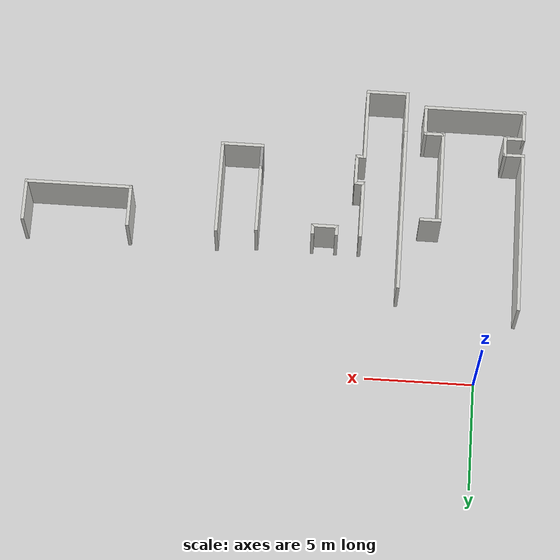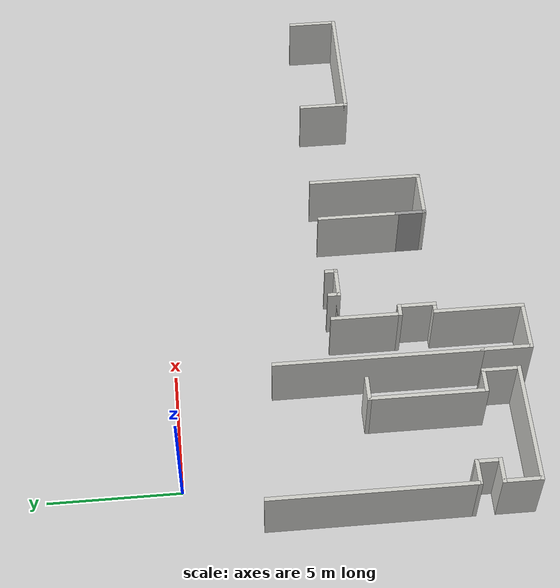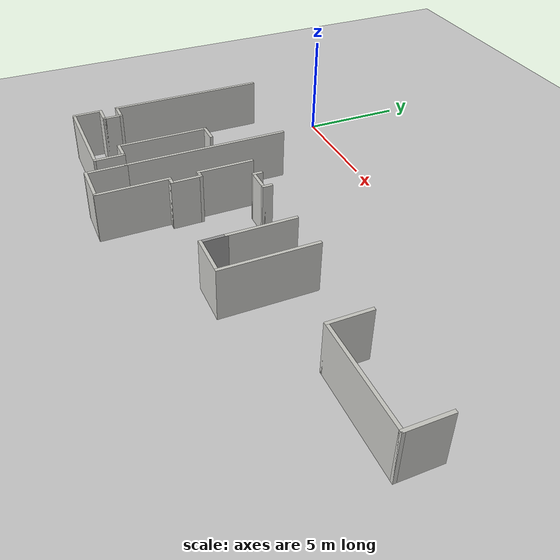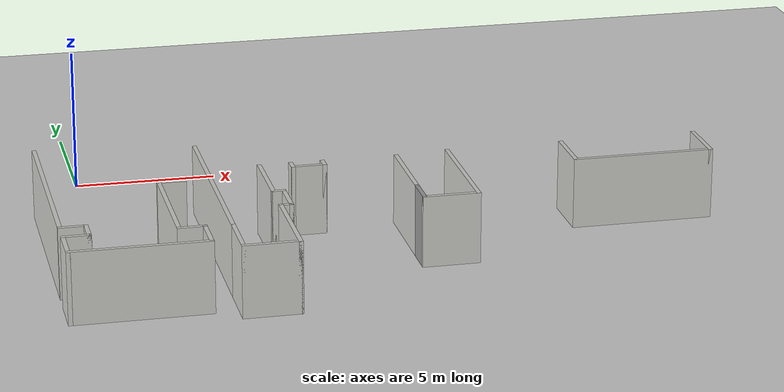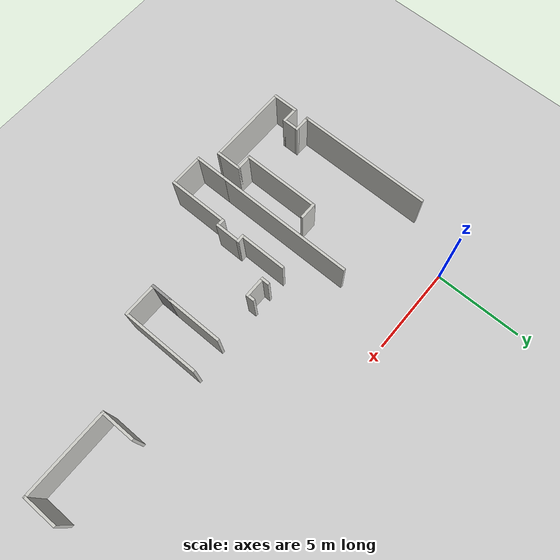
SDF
<sdf version="1.7">
 <world name="default">
  <model name="ground_plane">
   <static>1</static>
   <link name="link">
    <collision name="collision">
     <geometry><plane><normal>0 0 1</normal><size>100 100</size></plane></geometry>
     <surface>
      <contact><collide_bitmask>65535</collide_bitmask></contact>
      <friction><ode><mu>100</mu><mu2>50</mu2></ode></friction>
     </surface>
    </collision>
    <visual name="visual">
     <cast_shadows>0</cast_shadows>
     <geometry><plane><normal>0 0 1</normal><size>100 100</size></plane></geometry>
     <material>
      <script><uri>file://media/materials/scripts/gazebo.material</uri><name>Gazebo/Grey</name></script>
     </material>
    </visual>
   </link>
  </model>
  <model name="map_depo">
   <link name="Wall_35">
    <pose>-7.28378 -6.90998 0 0 -0 3.14159</pose>
    <visual name="Wall_35_Visual">
     <pose>0 0 1.25 0 -0 0</pose>
     <geometry><box><size>1 0.15 2.5</size></box></geometry>
     <material>
      <script><uri>file://media/materials/scripts/gazebo.material</uri><name>Gazebo/CeilingTiled</name></script>
      <ambient>1 1 1 1</ambient>
      <shader type="pixel"/>
     </material>
     <meta><layer>0</layer></meta>
    </visual>
    <collision name="Wall_35_Collision">
     <pose>0 0 1.25 0 -0 0</pose>
     <geometry><box><size>1 0.15 2.5</size></box></geometry>
     <surface>
      <friction>
       <ode><mu>1</mu><mu2>1</mu2><fdir1>0 0 0</fdir1><slip1>0</slip1><slip2>0</slip2></ode>
       <torsional>
        <coefficient>1</coefficient>
        <patch_radius>0</patch_radius>
        <surface_radius>0</surface_radius>
        <use_patch_radius>1</use_patch_radius>
        <ode><slip>0</slip></ode>
       </torsional>
      </friction>
      <bounce><restitution_coefficient>0</restitution_coefficient><threshold>1e+06</threshold></bounce>
      <contact>
       <collide_without_contact>0</collide_without_contact>
       <collide_without_contact_bitmask>1</collide_without_contact_bitmask>
       <collide_bitmask>1</collide_bitmask>
       <ode>
        <soft_cfm>0</soft_cfm>
        <soft_erp>0.2</soft_erp>
        <kp>1e+13</kp>
        <kd>1</kd>
        <max_vel>0.01</max_vel>
        <min_depth>0</min_depth>
       </ode>
       <bullet>
        <split_impulse>1</split_impulse>
        <split_impulse_penetration_threshold>-0.01</split_impulse_penetration_threshold>
        <soft_cfm>0</soft_cfm>
        <soft_erp>0.2</soft_erp>
        <kp>1e+13</kp>
        <kd>1</kd>
       </bullet>
      </contact>
     </surface>
    </collision>
   </link>
   <link name="Wall_36">
    <pose>-7.70878 -9.08498 0 0 0 -1.5708</pose>
    <visual name="Wall_36_Visual">
     <pose>0 0 1.25 0 -0 0</pose>
     <geometry><box><size>4.5 0.15 2.5</size></box></geometry>
     <material>
      <script><uri>file://media/materials/scripts/gazebo.material</uri><name>Gazebo/CeilingTiled</name></script>
      <ambient>1 1 1 1</ambient>
      <shader type="pixel"/>
     </material>
     <meta><layer>0</layer></meta>
    </visual>
    <collision name="Wall_36_Collision">
     <pose>0 0 1.25 0 -0 0</pose>
     <geometry><box><size>4.5 0.15 2.5</size></box></geometry>
     <surface>
      <friction>
       <ode><mu>1</mu><mu2>1</mu2><fdir1>0 0 0</fdir1><slip1>0</slip1><slip2>0</slip2></ode>
       <torsional>
        <coefficient>1</coefficient>
        <patch_radius>0</patch_radius>
        <surface_radius>0</surface_radius>
        <use_patch_radius>1</use_patch_radius>
        <ode><slip>0</slip></ode>
       </torsional>
      </friction>
      <bounce><restitution_coefficient>0</restitution_coefficient><threshold>1e+06</threshold></bounce>
      <contact>
       <collide_without_contact>0</collide_without_contact>
       <collide_without_contact_bitmask>1</collide_without_contact_bitmask>
       <collide_bitmask>1</collide_bitmask>
       <ode>
        <soft_cfm>0</soft_cfm>
        <soft_erp>0.2</soft_erp>
        <kp>1e+13</kp>
        <kd>1</kd>
        <max_vel>0.01</max_vel>
        <min_depth>0</min_depth>
       </ode>
       <bullet>
        <split_impulse>1</split_impulse>
        <split_impulse_penetration_threshold>-0.01</split_impulse_penetration_threshold>
        <soft_cfm>0</soft_cfm>
        <soft_erp>0.2</soft_erp>
        <kp>1e+13</kp>
        <kd>1</kd>
       </bullet>
      </contact>
     </surface>
    </collision>
   </link>
   <link name="Wall_39">
    <pose>-7.28378 -11.26 0 0 -0 0</pose>
    <visual name="Wall_39_Visual">
     <pose>0 0 1.25 0 -0 0</pose>
     <geometry><box><size>1 0.15 2.5</size></box></geometry>
     <material>
      <script><uri>file://media/materials/scripts/gazebo.material</uri><name>Gazebo/CeilingTiled</name></script>
      <ambient>1 1 1 1</ambient>
      <shader type="pixel"/>
     </material>
     <meta><layer>0</layer></meta>
    </visual>
    <collision name="Wall_39_Collision">
     <pose>0 0 1.25 0 -0 0</pose>
     <geometry><box><size>1 0.15 2.5</size></box></geometry>
     <surface>
      <friction>
       <ode><mu>1</mu><mu2>1</mu2><fdir1>0 0 0</fdir1><slip1>0</slip1><slip2>0</slip2></ode>
       <torsional>
        <coefficient>1</coefficient>
        <patch_radius>0</patch_radius>
        <surface_radius>0</surface_radius>
        <use_patch_radius>1</use_patch_radius>
        <ode><slip>0</slip></ode>
       </torsional>
      </friction>
      <bounce><restitution_coefficient>0</restitution_coefficient><threshold>1e+06</threshold></bounce>
      <contact>
       <collide_without_contact>0</collide_without_contact>
       <collide_without_contact_bitmask>1</collide_without_contact_bitmask>
       <collide_bitmask>1</collide_bitmask>
       <ode>
        <soft_cfm>0</soft_cfm>
        <soft_erp>0.2</soft_erp>
        <kp>1e+13</kp>
        <kd>1</kd>
        <max_vel>0.01</max_vel>
        <min_depth>0</min_depth>
       </ode>
       <bullet>
        <split_impulse>1</split_impulse>
        <split_impulse_penetration_threshold>-0.01</split_impulse_penetration_threshold>
        <soft_cfm>0</soft_cfm>
        <soft_erp>0.2</soft_erp>
        <kp>1e+13</kp>
        <kd>1</kd>
       </bullet>
      </contact>
     </surface>
    </collision>
   </link>
   <link name="Wall_40">
    <pose>-6.85878 -11.935 0 0 0 -1.5708</pose>
    <visual name="Wall_40_Visual">
     <pose>0 0 1.25 0 -0 0</pose>
     <geometry><box><size>1.5 0.15 2.5</size></box></geometry>
     <material>
      <script><uri>file://media/materials/scripts/gazebo.material</uri><name>Gazebo/CeilingTiled</name></script>
      <ambient>1 1 1 1</ambient>
      <shader type="pixel"/>
     </material>
     <meta><layer>0</layer></meta>
    </visual>
    <collision name="Wall_40_Collision">
     <pose>0 0 1.25 0 -0 0</pose>
     <geometry><box><size>1.5 0.15 2.5</size></box></geometry>
     <surface>
      <friction>
       <ode><mu>1</mu><mu2>1</mu2><fdir1>0 0 0</fdir1><slip1>0</slip1><slip2>0</slip2></ode>
       <torsional>
        <coefficient>1</coefficient>
        <patch_radius>0</patch_radius>
        <surface_radius>0</surface_radius>
        <use_patch_radius>1</use_patch_radius>
        <ode><slip>0</slip></ode>
       </torsional>
      </friction>
      <bounce><restitution_coefficient>0</restitution_coefficient><threshold>1e+06</threshold></bounce>
      <contact>
       <collide_without_contact>0</collide_without_contact>
       <collide_without_contact_bitmask>1</collide_without_contact_bitmask>
       <collide_bitmask>1</collide_bitmask>
       <ode>
        <soft_cfm>0</soft_cfm>
        <soft_erp>0.2</soft_erp>
        <kp>1e+13</kp>
        <kd>1</kd>
        <max_vel>0.01</max_vel>
        <min_depth>0</min_depth>
       </ode>
       <bullet>
        <split_impulse>1</split_impulse>
        <split_impulse_penetration_threshold>-0.01</split_impulse_penetration_threshold>
        <soft_cfm>0</soft_cfm>
        <soft_erp>0.2</soft_erp>
        <kp>1e+13</kp>
        <kd>1</kd>
       </bullet>
      </contact>
     </surface>
    </collision>
   </link>
   <link name="Wall_41">
    <pose>-9.15878 -12.61 0 0 -0 3.14159</pose>
    <visual name="Wall_41_Visual">
     <pose>0 0 1.25 0 -0 0</pose>
     <geometry><box><size>4.75 0.15 2.5</size></box></geometry>
     <material>
      <script><uri>file://media/materials/scripts/gazebo.material</uri><name>Gazebo/CeilingTiled</name></script>
      <ambient>1 1 1 1</ambient>
      <shader type="pixel"/>
     </material>
     <meta><layer>0</layer></meta>
    </visual>
    <collision name="Wall_41_Collision">
     <pose>0 0 1.25 0 -0 0</pose>
     <geometry><box><size>4.75 0.15 2.5</size></box></geometry>
     <surface>
      <friction>
       <ode><mu>1</mu><mu2>1</mu2><fdir1>0 0 0</fdir1><slip1>0</slip1><slip2>0</slip2></ode>
       <torsional>
        <coefficient>1</coefficient>
        <patch_radius>0</patch_radius>
        <surface_radius>0</surface_radius>
        <use_patch_radius>1</use_patch_radius>
        <ode><slip>0</slip></ode>
       </torsional>
      </friction>
      <bounce><restitution_coefficient>0</restitution_coefficient><threshold>1e+06</threshold></bounce>
      <contact>
       <collide_without_contact>0</collide_without_contact>
       <collide_without_contact_bitmask>1</collide_without_contact_bitmask>
       <collide_bitmask>1</collide_bitmask>
       <ode>
        <soft_cfm>0</soft_cfm>
        <soft_erp>0.2</soft_erp>
        <kp>1e+13</kp>
        <kd>1</kd>
        <max_vel>0.01</max_vel>
        <min_depth>0</min_depth>
       </ode>
       <bullet>
        <split_impulse>1</split_impulse>
        <split_impulse_penetration_threshold>-0.01</split_impulse_penetration_threshold>
        <soft_cfm>0</soft_cfm>
        <soft_erp>0.2</soft_erp>
        <kp>1e+13</kp>
        <kd>1</kd>
       </bullet>
      </contact>
     </surface>
    </collision>
   </link>
   <link name="Wall_42">
    <pose>-11.4588 -11.935 0 0 -0 1.5708</pose>
    <visual name="Wall_42_Visual">
     <pose>0 0 1.25 0 -0 0</pose>
     <geometry><box><size>1.5 0.15 2.5</size></box></geometry>
     <material>
      <script><uri>file://media/materials/scripts/gazebo.material</uri><name>Gazebo/CeilingTiled</name></script>
      <ambient>1 1 1 1</ambient>
      <shader type="pixel"/>
     </material>
     <meta><layer>0</layer></meta>
    </visual>
    <collision name="Wall_42_Collision">
     <pose>0 0 1.25 0 -0 0</pose>
     <geometry><box><size>1.5 0.15 2.5</size></box></geometry>
     <surface>
      <friction>
       <ode><mu>1</mu><mu2>1</mu2><fdir1>0 0 0</fdir1><slip1>0</slip1><slip2>0</slip2></ode>
       <torsional>
        <coefficient>1</coefficient>
        <patch_radius>0</patch_radius>
        <surface_radius>0</surface_radius>
        <use_patch_radius>1</use_patch_radius>
        <ode><slip>0</slip></ode>
       </torsional>
      </friction>
      <bounce><restitution_coefficient>0</restitution_coefficient><threshold>1e+06</threshold></bounce>
      <contact>
       <collide_without_contact>0</collide_without_contact>
       <collide_without_contact_bitmask>1</collide_without_contact_bitmask>
       <collide_bitmask>1</collide_bitmask>
       <ode>
        <soft_cfm>0</soft_cfm>
        <soft_erp>0.2</soft_erp>
        <kp>1e+13</kp>
        <kd>1</kd>
        <max_vel>0.01</max_vel>
        <min_depth>0</min_depth>
       </ode>
       <bullet>
        <split_impulse>1</split_impulse>
        <split_impulse_penetration_threshold>-0.01</split_impulse_penetration_threshold>
        <soft_cfm>0</soft_cfm>
        <soft_erp>0.2</soft_erp>
        <kp>1e+13</kp>
        <kd>1</kd>
       </bullet>
      </contact>
     </surface>
    </collision>
   </link>
   <link name="Wall_43">
    <pose>-11.0338 -11.26 0 0 -0 0</pose>
    <visual name="Wall_43_Visual">
     <pose>0 0 1.25 0 -0 0</pose>
     <geometry><box><size>1 0.15 2.5</size></box></geometry>
     <material>
      <script><uri>file://media/materials/scripts/gazebo.material</uri><name>Gazebo/CeilingTiled</name></script>
      <ambient>1 1 1 1</ambient>
      <shader type="pixel"/>
     </material>
     <meta><layer>0</layer></meta>
    </visual>
    <collision name="Wall_43_Collision">
     <pose>0 0 1.25 0 -0 0</pose>
     <geometry><box><size>1 0.15 2.5</size></box></geometry>
     <surface>
      <friction>
       <ode><mu>1</mu><mu2>1</mu2><fdir1>0 0 0</fdir1><slip1>0</slip1><slip2>0</slip2></ode>
       <torsional>
        <coefficient>1</coefficient>
        <patch_radius>0</patch_radius>
        <surface_radius>0</surface_radius>
        <use_patch_radius>1</use_patch_radius>
        <ode><slip>0</slip></ode>
       </torsional>
      </friction>
      <bounce><restitution_coefficient>0</restitution_coefficient><threshold>1e+06</threshold></bounce>
      <contact>
       <collide_without_contact>0</collide_without_contact>
       <collide_without_contact_bitmask>1</collide_without_contact_bitmask>
       <collide_bitmask>1</collide_bitmask>
       <ode>
        <soft_cfm>0</soft_cfm>
        <soft_erp>0.2</soft_erp>
        <kp>1e+13</kp>
        <kd>1</kd>
        <max_vel>0.01</max_vel>
        <min_depth>0</min_depth>
       </ode>
       <bullet>
        <split_impulse>1</split_impulse>
        <split_impulse_penetration_threshold>-0.01</split_impulse_penetration_threshold>
        <soft_cfm>0</soft_cfm>
        <soft_erp>0.2</soft_erp>
        <kp>1e+13</kp>
        <kd>1</kd>
       </bullet>
      </contact>
     </surface>
    </collision>
   </link>
   <link name="Wall_44">
    <pose>-10.6088 -10.835 0 0 -0 1.5708</pose>
    <visual name="Wall_44_Visual">
     <pose>0 0 1.25 0 -0 0</pose>
     <geometry><box><size>1 0.15 2.5</size></box></geometry>
     <material>
      <script><uri>file://media/materials/scripts/gazebo.material</uri><name>Gazebo/CeilingTiled</name></script>
      <ambient>1 1 1 1</ambient>
      <shader type="pixel"/>
     </material>
     <meta><layer>0</layer></meta>
    </visual>
    <collision name="Wall_44_Collision">
     <pose>0 0 1.25 0 -0 0</pose>
     <geometry><box><size>1 0.15 2.5</size></box></geometry>
     <surface>
      <friction>
       <ode><mu>1</mu><mu2>1</mu2><fdir1>0 0 0</fdir1><slip1>0</slip1><slip2>0</slip2></ode>
       <torsional>
        <coefficient>1</coefficient>
        <patch_radius>0</patch_radius>
        <surface_radius>0</surface_radius>
        <use_patch_radius>1</use_patch_radius>
        <ode><slip>0</slip></ode>
       </torsional>
      </friction>
      <bounce><restitution_coefficient>0</restitution_coefficient><threshold>1e+06</threshold></bounce>
      <contact>
       <collide_without_contact>0</collide_without_contact>
       <collide_without_contact_bitmask>1</collide_without_contact_bitmask>
       <collide_bitmask>1</collide_bitmask>
       <ode>
        <soft_cfm>0</soft_cfm>
        <soft_erp>0.2</soft_erp>
        <kp>1e+13</kp>
        <kd>1</kd>
        <max_vel>0.01</max_vel>
        <min_depth>0</min_depth>
       </ode>
       <bullet>
        <split_impulse>1</split_impulse>
        <split_impulse_penetration_threshold>-0.01</split_impulse_penetration_threshold>
        <soft_cfm>0</soft_cfm>
        <soft_erp>0.2</soft_erp>
        <kp>1e+13</kp>
        <kd>1</kd>
       </bullet>
      </contact>
     </surface>
    </collision>
   </link>
   <link name="Wall_45">
    <pose>-11.0338 -10.41 0 0 -0 3.14159</pose>
    <visual name="Wall_45_Visual">
     <pose>0 0 1.25 0 -0 0</pose>
     <geometry><box><size>1 0.15 2.5</size></box></geometry>
     <material>
      <script><uri>file://media/materials/scripts/gazebo.material</uri><name>Gazebo/CeilingTiled</name></script>
      <ambient>1 1 1 1</ambient>
      <shader type="pixel"/>
     </material>
     <meta><layer>0</layer></meta>
    </visual>
    <collision name="Wall_45_Collision">
     <pose>0 0 1.25 0 -0 0</pose>
     <geometry><box><size>1 0.15 2.5</size></box></geometry>
     <surface>
      <friction>
       <ode><mu>1</mu><mu2>1</mu2><fdir1>0 0 0</fdir1><slip1>0</slip1><slip2>0</slip2></ode>
       <torsional>
        <coefficient>1</coefficient>
        <patch_radius>0</patch_radius>
        <surface_radius>0</surface_radius>
        <use_patch_radius>1</use_patch_radius>
        <ode><slip>0</slip></ode>
       </torsional>
      </friction>
      <bounce><restitution_coefficient>0</restitution_coefficient><threshold>1e+06</threshold></bounce>
      <contact>
       <collide_without_contact>0</collide_without_contact>
       <collide_without_contact_bitmask>1</collide_without_contact_bitmask>
       <collide_bitmask>1</collide_bitmask>
       <ode>
        <soft_cfm>0</soft_cfm>
        <soft_erp>0.2</soft_erp>
        <kp>1e+13</kp>
        <kd>1</kd>
        <max_vel>0.01</max_vel>
        <min_depth>0</min_depth>
       </ode>
       <bullet>
        <split_impulse>1</split_impulse>
        <split_impulse_penetration_threshold>-0.01</split_impulse_penetration_threshold>
        <soft_cfm>0</soft_cfm>
        <soft_erp>0.2</soft_erp>
        <kp>1e+13</kp>
        <kd>1</kd>
       </bullet>
      </contact>
     </surface>
    </collision>
   </link>
   <link name="Wall_46">
    <pose>-11.4588 -6.60998 0 0 -0 1.5708</pose>
    <visual name="Wall_46_Visual">
     <pose>0 0 1.25 0 -0 0</pose>
     <geometry><box><size>7.75 0.15 2.5</size></box></geometry>
     <material>
      <script><uri>file://media/materials/scripts/gazebo.material</uri><name>Gazebo/CeilingTiled</name></script>
      <ambient>1 1 1 1</ambient>
      <shader type="pixel"/>
     </material>
     <meta><layer>0</layer></meta>
    </visual>
    <collision name="Wall_46_Collision">
     <pose>0 0 1.25 0 -0 0</pose>
     <geometry><box><size>7.75 0.15 2.5</size></box></geometry>
     <surface>
      <friction>
       <ode><mu>1</mu><mu2>1</mu2><fdir1>0 0 0</fdir1><slip1>0</slip1><slip2>0</slip2></ode>
       <torsional>
        <coefficient>1</coefficient>
        <patch_radius>0</patch_radius>
        <surface_radius>0</surface_radius>
        <use_patch_radius>1</use_patch_radius>
        <ode><slip>0</slip></ode>
       </torsional>
      </friction>
      <bounce><restitution_coefficient>0</restitution_coefficient><threshold>1e+06</threshold></bounce>
      <contact>
       <collide_without_contact>0</collide_without_contact>
       <collide_without_contact_bitmask>1</collide_without_contact_bitmask>
       <collide_bitmask>1</collide_bitmask>
       <ode>
        <soft_cfm>0</soft_cfm>
        <soft_erp>0.2</soft_erp>
        <kp>1e+13</kp>
        <kd>1</kd>
        <max_vel>0.01</max_vel>
        <min_depth>0</min_depth>
       </ode>
       <bullet>
        <split_impulse>1</split_impulse>
        <split_impulse_penetration_threshold>-0.01</split_impulse_penetration_threshold>
        <soft_cfm>0</soft_cfm>
        <soft_erp>0.2</soft_erp>
        <kp>1e+13</kp>
        <kd>1</kd>
       </bullet>
      </contact>
     </surface>
    </collision>
   </link>
   <link name="Wall_68">
    <pose>-5.95009 -7.45997 0 0 0 -1.5708</pose>
    <visual name="Wall_68_Visual">
     <pose>0 0 1.25 0 -0 0</pose>
     <geometry><box><size>8 0.15 2.5</size></box></geometry>
     <material>
      <script><uri>file://media/materials/scripts/gazebo.material</uri><name>Gazebo/CeilingTiled</name></script>
      <ambient>1 1 1 1</ambient>
      <shader type="pixel"/>
     </material>
     <meta><layer>0</layer></meta>
    </visual>
    <collision name="Wall_68_Collision">
     <pose>0 0 1.25 0 -0 0</pose>
     <geometry><box><size>8 0.15 2.5</size></box></geometry>
     <surface>
      <friction>
       <ode><mu>1</mu><mu2>1</mu2><fdir1>0 0 0</fdir1><slip1>0</slip1><slip2>0</slip2></ode>
       <torsional>
        <coefficient>1</coefficient>
        <patch_radius>0</patch_radius>
        <surface_radius>0</surface_radius>
        <use_patch_radius>1</use_patch_radius>
        <ode><slip>0</slip></ode>
       </torsional>
      </friction>
      <bounce><restitution_coefficient>0</restitution_coefficient><threshold>1e+06</threshold></bounce>
      <contact>
       <collide_without_contact>0</collide_without_contact>
       <collide_without_contact_bitmask>1</collide_without_contact_bitmask>
       <collide_bitmask>1</collide_bitmask>
       <ode>
        <soft_cfm>0</soft_cfm>
        <soft_erp>0.2</soft_erp>
        <kp>1e+13</kp>
        <kd>1</kd>
        <max_vel>0.01</max_vel>
        <min_depth>0</min_depth>
       </ode>
       <bullet>
        <split_impulse>1</split_impulse>
        <split_impulse_penetration_threshold>-0.01</split_impulse_penetration_threshold>
        <soft_cfm>0</soft_cfm>
        <soft_erp>0.2</soft_erp>
        <kp>1e+13</kp>
        <kd>1</kd>
       </bullet>
      </contact>
     </surface>
    </collision>
   </link>
   <link name="Wall_70">
    <pose>-5.95009 -12.31 0 0 0 -1.5708</pose>
    <visual name="Wall_70_Visual">
     <pose>0 0 1.25 0 -0 0</pose>
     <geometry><box><size>2 0.15 2.5</size></box></geometry>
     <material>
      <script><uri>file://media/materials/scripts/gazebo.material</uri><name>Gazebo/CeilingTiled</name></script>
      <ambient>1 1 1 1</ambient>
      <shader type="pixel"/>
     </material>
     <meta><layer>0</layer></meta>
    </visual>
    <collision name="Wall_70_Collision">
     <pose>0 0 1.25 0 -0 0</pose>
     <geometry><box><size>2 0.15 2.5</size></box></geometry>
     <surface>
      <friction>
       <ode><mu>1</mu><mu2>1</mu2><fdir1>0 0 0</fdir1><slip1>0</slip1><slip2>0</slip2></ode>
       <torsional>
        <coefficient>1</coefficient>
        <patch_radius>0</patch_radius>
        <surface_radius>0</surface_radius>
        <use_patch_radius>1</use_patch_radius>
        <ode><slip>0</slip></ode>
       </torsional>
      </friction>
      <bounce><restitution_coefficient>0</restitution_coefficient><threshold>1e+06</threshold></bounce>
      <contact>
       <collide_without_contact>0</collide_without_contact>
       <collide_without_contact_bitmask>1</collide_without_contact_bitmask>
       <collide_bitmask>1</collide_bitmask>
       <ode>
        <soft_cfm>0</soft_cfm>
        <soft_erp>0.2</soft_erp>
        <kp>1e+13</kp>
        <kd>1</kd>
        <max_vel>0.01</max_vel>
        <min_depth>0</min_depth>
       </ode>
       <bullet>
        <split_impulse>1</split_impulse>
        <split_impulse_penetration_threshold>-0.01</split_impulse_penetration_threshold>
        <soft_cfm>0</soft_cfm>
        <soft_erp>0.2</soft_erp>
        <kp>1e+13</kp>
        <kd>1</kd>
       </bullet>
      </contact>
     </surface>
    </collision>
   </link>
   <link name="Wall_71">
    <pose>-5.02509 -13.235 0 0 -0 0</pose>
    <visual name="Wall_71_Visual">
     <pose>0 0 1.25 0 -0 0</pose>
     <geometry><box><size>2 0.15 2.5</size></box></geometry>
     <material>
      <script><uri>file://media/materials/scripts/gazebo.material</uri><name>Gazebo/CeilingTiled</name></script>
      <ambient>1 1 1 1</ambient>
      <shader type="pixel"/>
     </material>
     <meta><layer>0</layer></meta>
    </visual>
    <collision name="Wall_71_Collision">
     <pose>0 0 1.25 0 -0 0</pose>
     <geometry><box><size>2 0.15 2.5</size></box></geometry>
     <surface>
      <friction>
       <ode><mu>1</mu><mu2>1</mu2><fdir1>0 0 0</fdir1><slip1>0</slip1><slip2>0</slip2></ode>
       <torsional>
        <coefficient>1</coefficient>
        <patch_radius>0</patch_radius>
        <surface_radius>0</surface_radius>
        <use_patch_radius>1</use_patch_radius>
        <ode><slip>0</slip></ode>
       </torsional>
      </friction>
      <bounce><restitution_coefficient>0</restitution_coefficient><threshold>1e+06</threshold></bounce>
      <contact>
       <collide_without_contact>0</collide_without_contact>
       <collide_without_contact_bitmask>1</collide_without_contact_bitmask>
       <collide_bitmask>1</collide_bitmask>
       <ode>
        <soft_cfm>0</soft_cfm>
        <soft_erp>0.2</soft_erp>
        <kp>1e+13</kp>
        <kd>1</kd>
        <max_vel>0.01</max_vel>
        <min_depth>0</min_depth>
       </ode>
       <bullet>
        <split_impulse>1</split_impulse>
        <split_impulse_penetration_threshold>-0.01</split_impulse_penetration_threshold>
        <soft_cfm>0</soft_cfm>
        <soft_erp>0.2</soft_erp>
        <kp>1e+13</kp>
        <kd>1</kd>
       </bullet>
      </contact>
     </surface>
    </collision>
   </link>
   <link name="Wall_72">
    <pose>-4.10009 -11.56 0 0 -0 1.5708</pose>
    <visual name="Wall_72_Visual">
     <pose>0 0 1.25 0 -0 0</pose>
     <geometry><box><size>3.5 0.15 2.5</size></box></geometry>
     <material>
      <script><uri>file://media/materials/scripts/gazebo.material</uri><name>Gazebo/CeilingTiled</name></script>
      <ambient>1 1 1 1</ambient>
      <shader type="pixel"/>
     </material>
     <meta><layer>0</layer></meta>
    </visual>
    <collision name="Wall_72_Collision">
     <pose>0 0 1.25 0 -0 0</pose>
     <geometry><box><size>3.5 0.15 2.5</size></box></geometry>
     <surface>
      <friction>
       <ode><mu>1</mu><mu2>1</mu2><fdir1>0 0 0</fdir1><slip1>0</slip1><slip2>0</slip2></ode>
       <torsional>
        <coefficient>1</coefficient>
        <patch_radius>0</patch_radius>
        <surface_radius>0</surface_radius>
        <use_patch_radius>1</use_patch_radius>
        <ode><slip>0</slip></ode>
       </torsional>
      </friction>
      <bounce><restitution_coefficient>0</restitution_coefficient><threshold>1e+06</threshold></bounce>
      <contact>
       <collide_without_contact>0</collide_without_contact>
       <collide_without_contact_bitmask>1</collide_without_contact_bitmask>
       <collide_bitmask>1</collide_bitmask>
       <ode>
        <soft_cfm>0</soft_cfm>
        <soft_erp>0.2</soft_erp>
        <kp>1e+13</kp>
        <kd>1</kd>
        <max_vel>0.01</max_vel>
        <min_depth>0</min_depth>
       </ode>
       <bullet>
        <split_impulse>1</split_impulse>
        <split_impulse_penetration_threshold>-0.01</split_impulse_penetration_threshold>
        <soft_cfm>0</soft_cfm>
        <soft_erp>0.2</soft_erp>
        <kp>1e+13</kp>
        <kd>1</kd>
       </bullet>
      </contact>
     </surface>
    </collision>
   </link>
   <link name="Wall_73">
    <pose>-3.92509 -9.88497 0 0 -0 0</pose>
    <visual name="Wall_73_Visual">
     <pose>0 0 1.25 0 -0 0</pose>
     <geometry><box><size>0.5 0.15 2.5</size></box></geometry>
     <material>
      <script><uri>file://media/materials/scripts/gazebo.material</uri><name>Gazebo/CeilingTiled</name></script>
      <ambient>1 1 1 1</ambient>
      <shader type="pixel"/>
     </material>
     <meta><layer>0</layer></meta>
    </visual>
    <collision name="Wall_73_Collision">
     <pose>0 0 1.25 0 -0 0</pose>
     <geometry><box><size>0.5 0.15 2.5</size></box></geometry>
     <surface>
      <friction>
       <ode><mu>1</mu><mu2>1</mu2><fdir1>0 0 0</fdir1><slip1>0</slip1><slip2>0</slip2></ode>
       <torsional>
        <coefficient>1</coefficient>
        <patch_radius>0</patch_radius>
        <surface_radius>0</surface_radius>
        <use_patch_radius>1</use_patch_radius>
        <ode><slip>0</slip></ode>
       </torsional>
      </friction>
      <bounce><restitution_coefficient>0</restitution_coefficient><threshold>1e+06</threshold></bounce>
      <contact>
       <collide_without_contact>0</collide_without_contact>
       <collide_without_contact_bitmask>1</collide_without_contact_bitmask>
       <collide_bitmask>1</collide_bitmask>
       <ode>
        <soft_cfm>0</soft_cfm>
        <soft_erp>0.2</soft_erp>
        <kp>1e+13</kp>
        <kd>1</kd>
        <max_vel>0.01</max_vel>
        <min_depth>0</min_depth>
       </ode>
       <bullet>
        <split_impulse>1</split_impulse>
        <split_impulse_penetration_threshold>-0.01</split_impulse_penetration_threshold>
        <soft_cfm>0</soft_cfm>
        <soft_erp>0.2</soft_erp>
        <kp>1e+13</kp>
        <kd>1</kd>
       </bullet>
      </contact>
     </surface>
    </collision>
   </link>
   <link name="Wall_74">
    <pose>-3.75009 -9.20997 0 0 -0 1.5708</pose>
    <visual name="Wall_74_Visual">
     <pose>0 0 1.25 0 -0 0</pose>
     <geometry><box><size>1.5 0.15 2.5</size></box></geometry>
     <material>
      <script><uri>file://media/materials/scripts/gazebo.material</uri><name>Gazebo/CeilingTiled</name></script>
      <ambient>1 1 1 1</ambient>
      <shader type="pixel"/>
     </material>
     <meta><layer>0</layer></meta>
    </visual>
    <collision name="Wall_74_Collision">
     <pose>0 0 1.25 0 -0 0</pose>
     <geometry><box><size>1.5 0.15 2.5</size></box></geometry>
     <surface>
      <friction>
       <ode><mu>1</mu><mu2>1</mu2><fdir1>0 0 0</fdir1><slip1>0</slip1><slip2>0</slip2></ode>
       <torsional>
        <coefficient>1</coefficient>
        <patch_radius>0</patch_radius>
        <surface_radius>0</surface_radius>
        <use_patch_radius>1</use_patch_radius>
        <ode><slip>0</slip></ode>
       </torsional>
      </friction>
      <bounce><restitution_coefficient>0</restitution_coefficient><threshold>1e+06</threshold></bounce>
      <contact>
       <collide_without_contact>0</collide_without_contact>
       <collide_without_contact_bitmask>1</collide_without_contact_bitmask>
       <collide_bitmask>1</collide_bitmask>
       <ode>
        <soft_cfm>0</soft_cfm>
        <soft_erp>0.2</soft_erp>
        <kp>1e+13</kp>
        <kd>1</kd>
        <max_vel>0.01</max_vel>
        <min_depth>0</min_depth>
       </ode>
       <bullet>
        <split_impulse>1</split_impulse>
        <split_impulse_penetration_threshold>-0.01</split_impulse_penetration_threshold>
        <soft_cfm>0</soft_cfm>
        <soft_erp>0.2</soft_erp>
        <kp>1e+13</kp>
        <kd>1</kd>
       </bullet>
      </contact>
     </surface>
    </collision>
   </link>
   <link name="Wall_75">
    <pose>-3.92509 -8.53497 0 0 -0 3.14159</pose>
    <visual name="Wall_75_Visual">
     <pose>0 0 1.25 0 -0 0</pose>
     <geometry><box><size>0.5 0.15 2.5</size></box></geometry>
     <material>
      <script><uri>file://media/materials/scripts/gazebo.material</uri><name>Gazebo/CeilingTiled</name></script>
      <ambient>1 1 1 1</ambient>
      <shader type="pixel"/>
     </material>
     <meta><layer>0</layer></meta>
    </visual>
    <collision name="Wall_75_Collision">
     <pose>0 0 1.25 0 -0 0</pose>
     <geometry><box><size>0.5 0.15 2.5</size></box></geometry>
     <surface>
      <friction>
       <ode><mu>1</mu><mu2>1</mu2><fdir1>0 0 0</fdir1><slip1>0</slip1><slip2>0</slip2></ode>
       <torsional>
        <coefficient>1</coefficient>
        <patch_radius>0</patch_radius>
        <surface_radius>0</surface_radius>
        <use_patch_radius>1</use_patch_radius>
        <ode><slip>0</slip></ode>
       </torsional>
      </friction>
      <bounce><restitution_coefficient>0</restitution_coefficient><threshold>1e+06</threshold></bounce>
      <contact>
       <collide_without_contact>0</collide_without_contact>
       <collide_without_contact_bitmask>1</collide_without_contact_bitmask>
       <collide_bitmask>1</collide_bitmask>
       <ode>
        <soft_cfm>0</soft_cfm>
        <soft_erp>0.2</soft_erp>
        <kp>1e+13</kp>
        <kd>1</kd>
        <max_vel>0.01</max_vel>
        <min_depth>0</min_depth>
       </ode>
       <bullet>
        <split_impulse>1</split_impulse>
        <split_impulse_penetration_threshold>-0.01</split_impulse_penetration_threshold>
        <soft_cfm>0</soft_cfm>
        <soft_erp>0.2</soft_erp>
        <kp>1e+13</kp>
        <kd>1</kd>
       </bullet>
      </contact>
     </surface>
    </collision>
   </link>
   <link name="Wall_76">
    <pose>-4.10009 -7.23497 0 0 -0 1.5708</pose>
    <visual name="Wall_76_Visual">
     <pose>0 0 1.25 0 -0 0</pose>
     <geometry><box><size>2.75 0.15 2.5</size></box></geometry>
     <material>
      <script><uri>file://media/materials/scripts/gazebo.material</uri><name>Gazebo/CeilingTiled</name></script>
      <ambient>1 1 1 1</ambient>
      <shader type="pixel"/>
     </material>
     <meta><layer>0</layer></meta>
    </visual>
    <collision name="Wall_76_Collision">
     <pose>0 0 1.25 0 -0 0</pose>
     <geometry><box><size>2.75 0.15 2.5</size></box></geometry>
     <surface>
      <friction>
       <ode><mu>1</mu><mu2>1</mu2><fdir1>0 0 0</fdir1><slip1>0</slip1><slip2>0</slip2></ode>
       <torsional>
        <coefficient>1</coefficient>
        <patch_radius>0</patch_radius>
        <surface_radius>0</surface_radius>
        <use_patch_radius>1</use_patch_radius>
        <ode><slip>0</slip></ode>
       </torsional>
      </friction>
      <bounce><restitution_coefficient>0</restitution_coefficient><threshold>1e+06</threshold></bounce>
      <contact>
       <collide_without_contact>0</collide_without_contact>
       <collide_without_contact_bitmask>1</collide_without_contact_bitmask>
       <collide_bitmask>1</collide_bitmask>
       <ode>
        <soft_cfm>0</soft_cfm>
        <soft_erp>0.2</soft_erp>
        <kp>1e+13</kp>
        <kd>1</kd>
        <max_vel>0.01</max_vel>
        <min_depth>0</min_depth>
       </ode>
       <bullet>
        <split_impulse>1</split_impulse>
        <split_impulse_penetration_threshold>-0.01</split_impulse_penetration_threshold>
        <soft_cfm>0</soft_cfm>
        <soft_erp>0.2</soft_erp>
        <kp>1e+13</kp>
        <kd>1</kd>
       </bullet>
      </contact>
     </surface>
    </collision>
   </link>
   <link name="Wall_79">
    <pose>-3.00009 -6.10997 0 0 0 -1.5708</pose>
    <visual name="Wall_79_Visual">
     <pose>0 0 1.25 0 -0 0</pose>
     <geometry><box><size>0.5 0.15 2.5</size></box></geometry>
     <material>
      <script><uri>file://media/materials/scripts/gazebo.material</uri><name>Gazebo/CeilingTiled</name></script>
      <ambient>1 1 1 1</ambient>
      <shader type="pixel"/>
     </material>
     <meta><layer>0</layer></meta>
    </visual>
    <collision name="Wall_79_Collision">
     <pose>0 0 1.25 0 -0 0</pose>
     <geometry><box><size>0.5 0.15 2.5</size></box></geometry>
     <surface>
      <friction>
       <ode><mu>1</mu><mu2>1</mu2><fdir1>0 0 0</fdir1><slip1>0</slip1><slip2>0</slip2></ode>
       <torsional>
        <coefficient>1</coefficient>
        <patch_radius>0</patch_radius>
        <surface_radius>0</surface_radius>
        <use_patch_radius>1</use_patch_radius>
        <ode><slip>0</slip></ode>
       </torsional>
      </friction>
      <bounce><restitution_coefficient>0</restitution_coefficient><threshold>1e+06</threshold></bounce>
      <contact>
       <collide_without_contact>0</collide_without_contact>
       <collide_without_contact_bitmask>1</collide_without_contact_bitmask>
       <collide_bitmask>1</collide_bitmask>
       <ode>
        <soft_cfm>0</soft_cfm>
        <soft_erp>0.2</soft_erp>
        <kp>1e+13</kp>
        <kd>1</kd>
        <max_vel>0.01</max_vel>
        <min_depth>0</min_depth>
       </ode>
       <bullet>
        <split_impulse>1</split_impulse>
        <split_impulse_penetration_threshold>-0.01</split_impulse_penetration_threshold>
        <soft_cfm>0</soft_cfm>
        <soft_erp>0.2</soft_erp>
        <kp>1e+13</kp>
        <kd>1</kd>
       </bullet>
      </contact>
     </surface>
    </collision>
   </link>
   <link name="Wall_80">
    <pose>-2.45009 -6.28497 0 0 -0 0</pose>
    <visual name="Wall_80_Visual">
     <pose>0 0 1.25 0 -0 0</pose>
     <geometry><box><size>1.25 0.15 2.5</size></box></geometry>
     <material>
      <script><uri>file://media/materials/scripts/gazebo.material</uri><name>Gazebo/CeilingTiled</name></script>
      <ambient>1 1 1 1</ambient>
      <shader type="pixel"/>
     </material>
     <meta><layer>0</layer></meta>
    </visual>
    <collision name="Wall_80_Collision">
     <pose>0 0 1.25 0 -0 0</pose>
     <geometry><box><size>1.25 0.15 2.5</size></box></geometry>
     <surface>
      <friction>
       <ode><mu>1</mu><mu2>1</mu2><fdir1>0 0 0</fdir1><slip1>0</slip1><slip2>0</slip2></ode>
       <torsional>
        <coefficient>1</coefficient>
        <patch_radius>0</patch_radius>
        <surface_radius>0</surface_radius>
        <use_patch_radius>1</use_patch_radius>
        <ode><slip>0</slip></ode>
       </torsional>
      </friction>
      <bounce><restitution_coefficient>0</restitution_coefficient><threshold>1e+06</threshold></bounce>
      <contact>
       <collide_without_contact>0</collide_without_contact>
       <collide_without_contact_bitmask>1</collide_without_contact_bitmask>
       <collide_bitmask>1</collide_bitmask>
       <ode>
        <soft_cfm>0</soft_cfm>
        <soft_erp>0.2</soft_erp>
        <kp>1e+13</kp>
        <kd>1</kd>
        <max_vel>0.01</max_vel>
        <min_depth>0</min_depth>
       </ode>
       <bullet>
        <split_impulse>1</split_impulse>
        <split_impulse_penetration_threshold>-0.01</split_impulse_penetration_threshold>
        <soft_cfm>0</soft_cfm>
        <soft_erp>0.2</soft_erp>
        <kp>1e+13</kp>
        <kd>1</kd>
       </bullet>
      </contact>
     </surface>
    </collision>
   </link>
   <link name="Wall_81">
    <pose>-1.90009 -6.10997 0 0 -0 1.5708</pose>
    <visual name="Wall_81_Visual">
     <pose>0 0 1.25 0 -0 0</pose>
     <geometry><box><size>0.5 0.15 2.5</size></box></geometry>
     <material>
      <script><uri>file://media/materials/scripts/gazebo.material</uri><name>Gazebo/CeilingTiled</name></script>
      <ambient>1 1 1 1</ambient>
      <shader type="pixel"/>
     </material>
     <meta><layer>0</layer></meta>
    </visual>
    <collision name="Wall_81_Collision">
     <pose>0 0 1.25 0 -0 0</pose>
     <geometry><box><size>0.5 0.15 2.5</size></box></geometry>
     <surface>
      <friction>
       <ode><mu>1</mu><mu2>1</mu2><fdir1>0 0 0</fdir1><slip1>0</slip1><slip2>0</slip2></ode>
       <torsional>
        <coefficient>1</coefficient>
        <patch_radius>0</patch_radius>
        <surface_radius>0</surface_radius>
        <use_patch_radius>1</use_patch_radius>
        <ode><slip>0</slip></ode>
       </torsional>
      </friction>
      <bounce><restitution_coefficient>0</restitution_coefficient><threshold>1e+06</threshold></bounce>
      <contact>
       <collide_without_contact>0</collide_without_contact>
       <collide_without_contact_bitmask>1</collide_without_contact_bitmask>
       <collide_bitmask>1</collide_bitmask>
       <ode>
        <soft_cfm>0</soft_cfm>
        <soft_erp>0.2</soft_erp>
        <kp>1e+13</kp>
        <kd>1</kd>
        <max_vel>0.01</max_vel>
        <min_depth>0</min_depth>
       </ode>
       <bullet>
        <split_impulse>1</split_impulse>
        <split_impulse_penetration_threshold>-0.01</split_impulse_penetration_threshold>
        <soft_cfm>0</soft_cfm>
        <soft_erp>0.2</soft_erp>
        <kp>1e+13</kp>
        <kd>1</kd>
       </bullet>
      </contact>
     </surface>
    </collision>
   </link>
   <link name="Wall_83">
    <pose>0.699914 -7.48497 0 0 0 -1.5708</pose>
    <visual name="Wall_83_Visual">
     <pose>0 0 1.25 0 -0 0</pose>
     <geometry><box><size>3.25 0.15 2.5</size></box></geometry>
     <material>
      <script><uri>file://media/materials/scripts/gazebo.material</uri><name>Gazebo/CeilingTiled</name></script>
      <ambient>1 1 1 1</ambient>
      <shader type="pixel"/>
     </material>
     <meta><layer>0</layer></meta>
    </visual>
    <collision name="Wall_83_Collision">
     <pose>0 0 1.25 0 -0 0</pose>
     <geometry><box><size>3.25 0.15 2.5</size></box></geometry>
     <surface>
      <friction>
       <ode><mu>1</mu><mu2>1</mu2><fdir1>0 0 0</fdir1><slip1>0</slip1><slip2>0</slip2></ode>
       <torsional>
        <coefficient>1</coefficient>
        <patch_radius>0</patch_radius>
        <surface_radius>0</surface_radius>
        <use_patch_radius>1</use_patch_radius>
        <ode><slip>0</slip></ode>
       </torsional>
      </friction>
      <bounce><restitution_coefficient>0</restitution_coefficient><threshold>1e+06</threshold></bounce>
      <contact>
       <collide_without_contact>0</collide_without_contact>
       <collide_without_contact_bitmask>1</collide_without_contact_bitmask>
       <collide_bitmask>1</collide_bitmask>
       <ode>
        <soft_cfm>0</soft_cfm>
        <soft_erp>0.2</soft_erp>
        <kp>1e+13</kp>
        <kd>1</kd>
        <max_vel>0.01</max_vel>
        <min_depth>0</min_depth>
       </ode>
       <bullet>
        <split_impulse>1</split_impulse>
        <split_impulse_penetration_threshold>-0.01</split_impulse_penetration_threshold>
        <soft_cfm>0</soft_cfm>
        <soft_erp>0.2</soft_erp>
        <kp>1e+13</kp>
        <kd>1</kd>
       </bullet>
      </contact>
     </surface>
    </collision>
   </link>
   <link name="Wall_85">
    <pose>0.699914 -9.58497 0 0 0 -1.5708</pose>
    <visual name="Wall_85_Visual">
     <pose>0 0 1.25 0 -0 0</pose>
     <geometry><box><size>1.25 0.15 2.5</size></box></geometry>
     <material>
      <script><uri>file://media/materials/scripts/gazebo.material</uri><name>Gazebo/Grey</name></script>
      <ambient>1 1 1 1</ambient>
      <shader type="pixel"/>
     </material>
     <meta><layer>0</layer></meta>
    </visual>
    <collision name="Wall_85_Collision">
     <pose>0 0 1.25 0 -0 0</pose>
     <geometry><box><size>1.25 0.15 2.5</size></box></geometry>
     <surface>
      <friction>
       <ode><mu>1</mu><mu2>1</mu2><fdir1>0 0 0</fdir1><slip1>0</slip1><slip2>0</slip2></ode>
       <torsional>
        <coefficient>1</coefficient>
        <patch_radius>0</patch_radius>
        <surface_radius>0</surface_radius>
        <use_patch_radius>1</use_patch_radius>
        <ode><slip>0</slip></ode>
       </torsional>
      </friction>
      <bounce><restitution_coefficient>0</restitution_coefficient><threshold>1e+06</threshold></bounce>
      <contact>
       <collide_without_contact>0</collide_without_contact>
       <collide_without_contact_bitmask>1</collide_without_contact_bitmask>
       <collide_bitmask>1</collide_bitmask>
       <ode>
        <soft_cfm>0</soft_cfm>
        <soft_erp>0.2</soft_erp>
        <kp>1e+13</kp>
        <kd>1</kd>
        <max_vel>0.01</max_vel>
        <min_depth>0</min_depth>
       </ode>
       <bullet>
        <split_impulse>1</split_impulse>
        <split_impulse_penetration_threshold>-0.01</split_impulse_penetration_threshold>
        <soft_cfm>0</soft_cfm>
        <soft_erp>0.2</soft_erp>
        <kp>1e+13</kp>
        <kd>1</kd>
       </bullet>
      </contact>
     </surface>
    </collision>
   </link>
   <link name="Wall_86">
    <pose>1.62491 -10.135 0 0 -0 0</pose>
    <visual name="Wall_86_Visual">
     <pose>0 0 1.25 0 -0 0</pose>
     <geometry><box><size>2 0.15 2.5</size></box></geometry>
     <material>
      <script><uri>file://media/materials/scripts/gazebo.material</uri><name>Gazebo/CeilingTiled</name></script>
      <ambient>1 1 1 1</ambient>
      <shader type="pixel"/>
     </material>
     <meta><layer>0</layer></meta>
    </visual>
    <collision name="Wall_86_Collision">
     <pose>0 0 1.25 0 -0 0</pose>
     <geometry><box><size>2 0.15 2.5</size></box></geometry>
     <surface>
      <friction>
       <ode><mu>1</mu><mu2>1</mu2><fdir1>0 0 0</fdir1><slip1>0</slip1><slip2>0</slip2></ode>
       <torsional>
        <coefficient>1</coefficient>
        <patch_radius>0</patch_radius>
        <surface_radius>0</surface_radius>
        <use_patch_radius>1</use_patch_radius>
        <ode><slip>0</slip></ode>
       </torsional>
      </friction>
      <bounce><restitution_coefficient>0</restitution_coefficient><threshold>1e+06</threshold></bounce>
      <contact>
       <collide_without_contact>0</collide_without_contact>
       <collide_without_contact_bitmask>1</collide_without_contact_bitmask>
       <collide_bitmask>1</collide_bitmask>
       <ode>
        <soft_cfm>0</soft_cfm>
        <soft_erp>0.2</soft_erp>
        <kp>1e+13</kp>
        <kd>1</kd>
        <max_vel>0.01</max_vel>
        <min_depth>0</min_depth>
       </ode>
       <bullet>
        <split_impulse>1</split_impulse>
        <split_impulse_penetration_threshold>-0.01</split_impulse_penetration_threshold>
        <soft_cfm>0</soft_cfm>
        <soft_erp>0.2</soft_erp>
        <kp>1e+13</kp>
        <kd>1</kd>
       </bullet>
      </contact>
     </surface>
    </collision>
   </link>
   <link name="Wall_87">
    <pose>2.54991 -7.95997 0 0 -0 1.5708</pose>
    <visual name="Wall_87_Visual">
     <pose>0 0 1.25 0 -0 0</pose>
     <geometry><box><size>4.5 0.15 2.5</size></box></geometry>
     <material>
      <script><uri>file://media/materials/scripts/gazebo.material</uri><name>Gazebo/CeilingTiled</name></script>
      <ambient>1 1 1 1</ambient>
      <shader type="pixel"/>
     </material>
     <meta><layer>0</layer></meta>
    </visual>
    <collision name="Wall_87_Collision">
     <pose>0 0 1.25 0 -0 0</pose>
     <geometry><box><size>4.5 0.15 2.5</size></box></geometry>
     <surface>
      <friction>
       <ode><mu>1</mu><mu2>1</mu2><fdir1>0 0 0</fdir1><slip1>0</slip1><slip2>0</slip2></ode>
       <torsional>
        <coefficient>1</coefficient>
        <patch_radius>0</patch_radius>
        <surface_radius>0</surface_radius>
        <use_patch_radius>1</use_patch_radius>
        <ode><slip>0</slip></ode>
       </torsional>
      </friction>
      <bounce><restitution_coefficient>0</restitution_coefficient><threshold>1e+06</threshold></bounce>
      <contact>
       <collide_without_contact>0</collide_without_contact>
       <collide_without_contact_bitmask>1</collide_without_contact_bitmask>
       <collide_bitmask>1</collide_bitmask>
       <ode>
        <soft_cfm>0</soft_cfm>
        <soft_erp>0.2</soft_erp>
        <kp>1e+13</kp>
        <kd>1</kd>
        <max_vel>0.01</max_vel>
        <min_depth>0</min_depth>
       </ode>
       <bullet>
        <split_impulse>1</split_impulse>
        <split_impulse_penetration_threshold>-0.01</split_impulse_penetration_threshold>
        <soft_cfm>0</soft_cfm>
        <soft_erp>0.2</soft_erp>
        <kp>1e+13</kp>
        <kd>1</kd>
       </bullet>
      </contact>
     </surface>
    </collision>
   </link>
   <link name="Wall_89">
    <pose>6.64991 -6.70997 0 0 0 -1.5708</pose>
    <visual name="Wall_89_Visual">
     <pose>0 0 1.25 0 -0 0</pose>
     <geometry><box><size>2 0.15 2.5</size></box></geometry>
     <material>
      <script><uri>file://media/materials/scripts/gazebo.material</uri><name>Gazebo/CeilingTiled</name></script>
      <ambient>1 1 1 1</ambient>
      <shader type="pixel"/>
     </material>
     <meta><layer>0</layer></meta>
    </visual>
    <collision name="Wall_89_Collision">
     <pose>0 0 1.25 0 -0 0</pose>
     <geometry><box><size>2 0.15 2.5</size></box></geometry>
     <surface>
      <friction>
       <ode><mu>1</mu><mu2>1</mu2><fdir1>0 0 0</fdir1><slip1>0</slip1><slip2>0</slip2></ode>
       <torsional>
        <coefficient>1</coefficient>
        <patch_radius>0</patch_radius>
        <surface_radius>0</surface_radius>
        <use_patch_radius>1</use_patch_radius>
        <ode><slip>0</slip></ode>
       </torsional>
      </friction>
      <bounce><restitution_coefficient>0</restitution_coefficient><threshold>1e+06</threshold></bounce>
      <contact>
       <collide_without_contact>0</collide_without_contact>
       <collide_without_contact_bitmask>1</collide_without_contact_bitmask>
       <collide_bitmask>1</collide_bitmask>
       <ode>
        <soft_cfm>0</soft_cfm>
        <soft_erp>0.2</soft_erp>
        <kp>1e+13</kp>
        <kd>1</kd>
        <max_vel>0.01</max_vel>
        <min_depth>0</min_depth>
       </ode>
       <bullet>
        <split_impulse>1</split_impulse>
        <split_impulse_penetration_threshold>-0.01</split_impulse_penetration_threshold>
        <soft_cfm>0</soft_cfm>
        <soft_erp>0.2</soft_erp>
        <kp>1e+13</kp>
        <kd>1</kd>
       </bullet>
      </contact>
     </surface>
    </collision>
   </link>
   <link name="Wall_90">
    <pose>9.07491 -7.63497 0 0 -0 0</pose>
    <visual name="Wall_90_Visual">
     <pose>0 0 1.25 0 -0 0</pose>
     <geometry><box><size>5 0.15 2.5</size></box></geometry>
     <material>
      <script><uri>file://media/materials/scripts/gazebo.material</uri><name>Gazebo/CeilingTiled</name></script>
      <ambient>1 1 1 1</ambient>
      <shader type="pixel"/>
     </material>
     <meta><layer>0</layer></meta>
    </visual>
    <collision name="Wall_90_Collision">
     <pose>0 0 1.25 0 -0 0</pose>
     <geometry><box><size>5 0.15 2.5</size></box></geometry>
     <surface>
      <friction>
       <ode><mu>1</mu><mu2>1</mu2><fdir1>0 0 0</fdir1><slip1>0</slip1><slip2>0</slip2></ode>
       <torsional>
        <coefficient>1</coefficient>
        <patch_radius>0</patch_radius>
        <surface_radius>0</surface_radius>
        <use_patch_radius>1</use_patch_radius>
        <ode><slip>0</slip></ode>
       </torsional>
      </friction>
      <bounce><restitution_coefficient>0</restitution_coefficient><threshold>1e+06</threshold></bounce>
      <contact>
       <collide_without_contact>0</collide_without_contact>
       <collide_without_contact_bitmask>1</collide_without_contact_bitmask>
       <collide_bitmask>1</collide_bitmask>
       <ode>
        <soft_cfm>0</soft_cfm>
        <soft_erp>0.2</soft_erp>
        <kp>1e+13</kp>
        <kd>1</kd>
        <max_vel>0.01</max_vel>
        <min_depth>0</min_depth>
       </ode>
       <bullet>
        <split_impulse>1</split_impulse>
        <split_impulse_penetration_threshold>-0.01</split_impulse_penetration_threshold>
        <soft_cfm>0</soft_cfm>
        <soft_erp>0.2</soft_erp>
        <kp>1e+13</kp>
        <kd>1</kd>
       </bullet>
      </contact>
     </surface>
    </collision>
   </link>
   <link name="Wall_91">
    <pose>11.4999 -6.70997 0 0 -0 1.5708</pose>
    <visual name="Wall_91_Visual">
     <pose>0 0 1.25 0 -0 0</pose>
     <geometry><box><size>2 0.15 2.5</size></box></geometry>
     <material>
      <script><uri>file://media/materials/scripts/gazebo.material</uri><name>Gazebo/CeilingTiled</name></script>
      <ambient>1 1 1 1</ambient>
      <shader type="pixel"/>
     </material>
     <meta><layer>0</layer></meta>
    </visual>
    <collision name="Wall_91_Collision">
     <pose>0 0 1.25 0 -0 0</pose>
     <geometry><box><size>2 0.15 2.5</size></box></geometry>
     <surface>
      <friction>
       <ode><mu>1</mu><mu2>1</mu2><fdir1>0 0 0</fdir1><slip1>0</slip1><slip2>0</slip2></ode>
       <torsional>
        <coefficient>1</coefficient>
        <patch_radius>0</patch_radius>
        <surface_radius>0</surface_radius>
        <use_patch_radius>1</use_patch_radius>
        <ode><slip>0</slip></ode>
       </torsional>
      </friction>
      <bounce><restitution_coefficient>0</restitution_coefficient><threshold>1e+06</threshold></bounce>
      <contact>
       <collide_without_contact>0</collide_without_contact>
       <collide_without_contact_bitmask>1</collide_without_contact_bitmask>
       <collide_bitmask>1</collide_bitmask>
       <ode>
        <soft_cfm>0</soft_cfm>
        <soft_erp>0.2</soft_erp>
        <kp>1e+13</kp>
        <kd>1</kd>
        <max_vel>0.01</max_vel>
        <min_depth>0</min_depth>
       </ode>
       <bullet>
        <split_impulse>1</split_impulse>
        <split_impulse_penetration_threshold>-0.01</split_impulse_penetration_threshold>
        <soft_cfm>0</soft_cfm>
        <soft_erp>0.2</soft_erp>
        <kp>1e+13</kp>
        <kd>1</kd>
       </bullet>
      </contact>
     </surface>
    </collision>
   </link>
   <static>1</static>
   <pose>9.70916 -0.159004 0 0 -0 0</pose>
  </model>
 </world>
</sdf>
